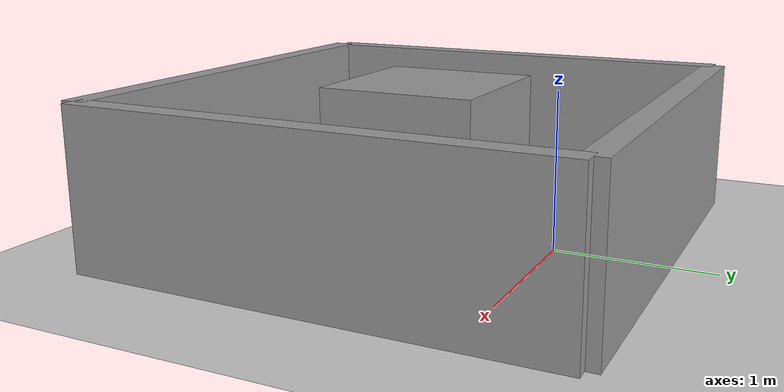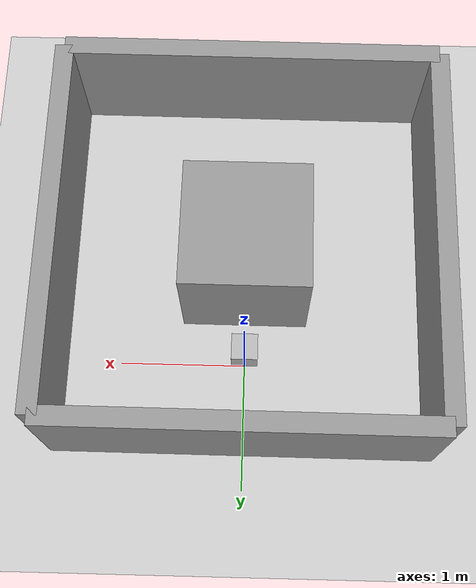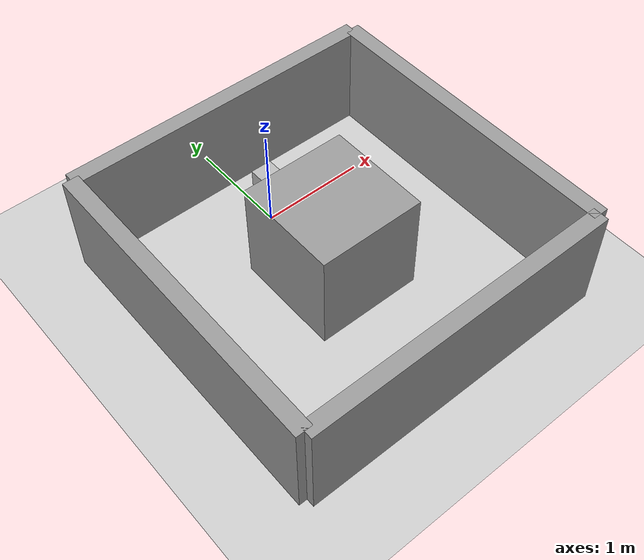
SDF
<sdf version="1.4">
 <world name="default">
  <light name="sun" type="directional">
   <pose>0 0 10 0 -0 0</pose>
   <diffuse>0.8 0.8 0.8 1</diffuse>
   <specular>0.2 0.2 0.2 1</specular>
   <attenuation>
    <range>1000</range>
    <constant>0.9</constant>
    <linear>0.01</linear>
    <quadratic>0.001</quadratic>
   </attenuation>
   <direction>0.5 0.1 -0.9</direction>
  </light>
  <model name="ground_plane">
   <static>1</static>
   <link name="link">
    <collision name="collision">
     <geometry><plane><normal>0 0 1</normal><size>100 100</size></plane></geometry>
     <surface><friction><ode><mu>100</mu><mu2>50</mu2></ode></friction></surface>
    </collision>
    <visual name="visual">
     <cast_shadows>0</cast_shadows>
     <geometry><plane><normal>0 0 1</normal><size>100 100</size></plane></geometry>
     <material>
      <script><uri>file://media/materials/scripts/gazebo.material</uri><name>Gazebo/Grey</name></script>
     </material>
    </visual>
    <velocity_decay><linear>0</linear><angular>0</angular></velocity_decay>
   </link>
  </model>
  <scene><ambient>0.4 0.4 0.4 1</ambient><background>0.7 0.7 0.7 1</background><shadows>0</shadows></scene>
  <physics type="ode">
   <max_step_size>0.01</max_step_size>
   <real_time_factor>1</real_time_factor>
   <real_time_update_rate>0</real_time_update_rate>
   <gravity>0 0 -9.8</gravity>
  </physics>
  <model name="box">
   <pose>0 0 0.5 0 0 0</pose>
   <link name="link">
    <collision name="collision"><geometry><box><size>0.2 0.2 0.2</size></box></geometry></collision>
    <visual name="visual"><geometry><box><size>0.2 0.2 0.2</size></box></geometry></visual>
   </link>
   <plugin name="model_push" filename="libmodel_push.so"/>
  </model>
  <include><uri>model://Maze_simple</uri><pose>0 -2.35 0 0 0 1.567</pose></include>
 </world>
</sdf>

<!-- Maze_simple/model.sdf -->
<sdf version='1.5'>
  <model name='Maze Simple'>
    <pose frame=''>-0.076 0.178 0 0 -0 0</pose>
    <link name='Wall_0'>
      <collision name='Wall_0_Collision'>
        <geometry>
          <box>
            <size>3 0.15 1</size>
          </box>
        </geometry>
        <pose frame=''>0 0 0.5 0 -0 0</pose>
      </collision>
      <visual name='Wall_0_Visual'>
        <pose frame=''>0 0 0.5 0 -0 0</pose>
        <geometry>
          <box>
            <size>3 0.15 1</size>
          </box>
        </geometry>
        <material>
          <script>
            <uri>file://media/materials/scripts/gazebo.material</uri>
            <name>Gazebo/Grey</name>
          </script>
          <ambient>1 1 1 1</ambient>
        </material>
      </visual>
      <pose frame=''>0 0 0 0 0 -1.5708</pose>
    </link>
    <link name='Wall_1'>
      <collision name='Wall_1_Collision'>
        <geometry>
          <box>
            <size>3 0.15 1</size>
          </box>
        </geometry>
        <pose frame=''>0 0 0.5 0 -0 0</pose>
      </collision>
      <visual name='Wall_1_Visual'>
        <pose frame=''>0 0 0.5 0 -0 0</pose>
        <geometry>
          <box>
            <size>3 0.15 1</size>
          </box>
        </geometry>
        <material>
          <script>
            <uri>file://media/materials/scripts/gazebo.material</uri>
            <name>Gazebo/Grey</name>
          </script>
          <ambient>1 1 1 1</ambient>
        </material>
      </visual>
      <pose frame=''>1.5 -1.5 0 0 -0 0</pose>
    </link>
    <link name='Wall_2'>
      <collision name='Wall_2_Collision'>
        <geometry>
          <box>
            <size>3 0.15 1</size>
          </box>
        </geometry>
        <pose frame=''>0 0 0.5 0 -0 0</pose>
      </collision>
      <visual name='Wall_2_Visual'>
        <pose frame=''>0 0 0.5 0 -0 0</pose>
        <geometry>
          <box>
            <size>3 0.15 1</size>
          </box>
        </geometry>
        <material>
          <script>
            <uri>file://media/materials/scripts/gazebo.material</uri>
            <name>Gazebo/Grey</name>
          </script>
          <ambient>1 1 1 1</ambient>
        </material>
      </visual>
      <pose frame=''>1.5 1.5 0 0 -0 0</pose>
    </link>
    <link name='Wall_3'>
      <collision name='Wall_3_Collision'>
        <geometry>
          <box>
            <size>3 0.15 1</size>
          </box>
        </geometry>
        <pose frame=''>0 0 0.5 0 -0 0</pose>
      </collision>
      <visual name='Wall_3_Visual'>
        <pose frame=''>0 0 0.5 0 -0 0</pose>
        <geometry>
          <box>
            <size>3 0.15 1</size>
          </box>
        </geometry>
        <material>
          <script>
            <uri>file://media/materials/scripts/gazebo.material</uri>
            <name>Gazebo/Grey</name>
          </script>
          <ambient>1 1 1 1</ambient>
        </material>
      </visual>
      <pose frame=''>3 0 0 0 0 -1.5708</pose>
    </link>
    <link name='Center'>
      <collision name='Center_Collision'>
        <geometry>
          <box>
            <size>1 1 1</size>
          </box>
        </geometry>
        <pose frame=''>0 0 0.5 0 -0 0</pose>
      </collision>
      <visual name='Center_Visual'>
        <pose frame=''>0 0 0.5 0 -0 0</pose>
        <geometry>
          <box>
            <size>1 1 1</size>
          </box>
        </geometry>
        <material>
          <script>
            <uri>file://media/materials/scripts/gazebo.material</uri>
            <name>Gazebo/Grey</name>
          </script>
          <ambient>1 1 1 1</ambient>
        </material>
      </visual>
      <pose frame=''>1.5 0 0 0 0 -1.5708</pose>
    </link>
    <static>1</static>
  </model>
</sdf>
